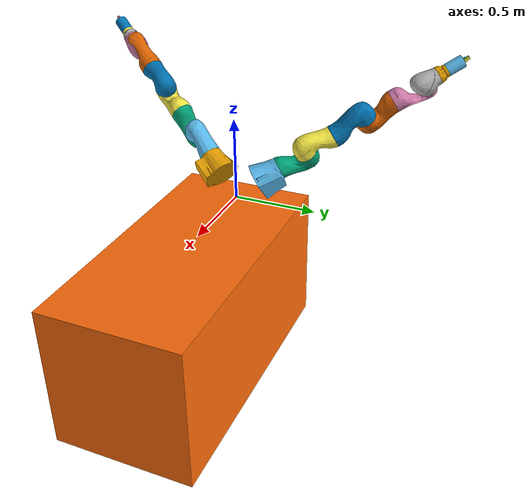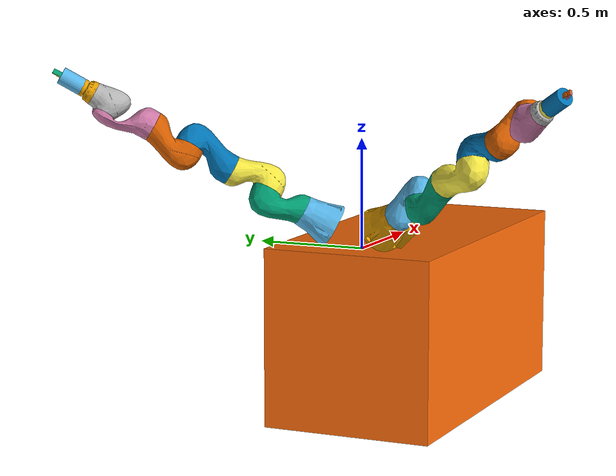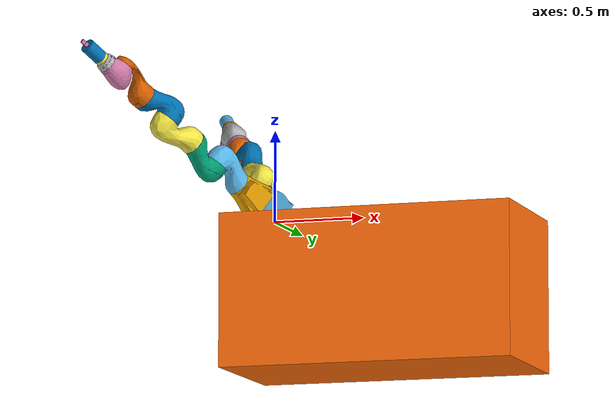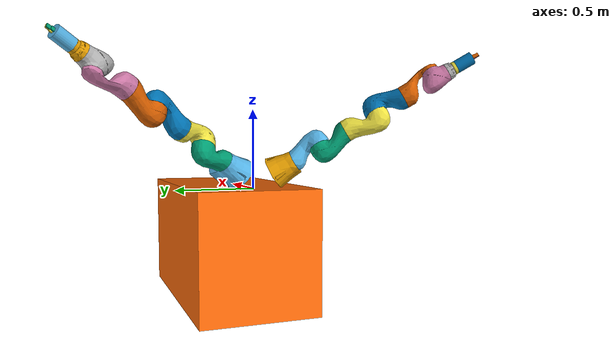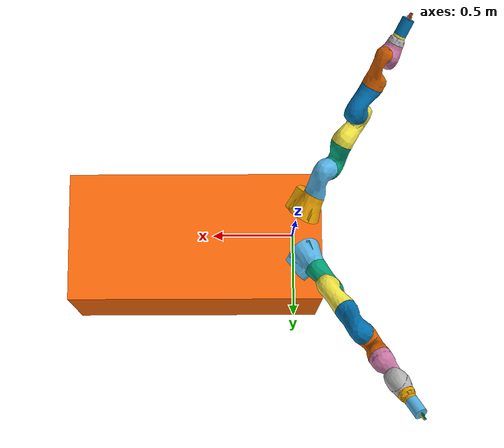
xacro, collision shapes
<?xml version="1.0"?>

<robot name="bh_robot" xmlns:xacro="http://www.ros.org/wiki/xacro">

    <xacro:property name="PI" value="3.14159265359"/>
    <xacro:property name="table_width" value="0.8" />
    <xacro:property name="table_height" value="0.83" />

    <!-- include the lbr iiwa macro -->
    <xacro:include filename="$(find lbr_description)/urdf/iiwa7/iiwa7_description.xacro" />

    <!-- include gripper -->
    <xacro:include filename="$(find dual_arm_description)/urdf/gripper/robotiq_hande_gripper.xacro" />

    <!-- include table and torso macro -->
    <xacro:include filename="$(find dual_arm_description)/urdf/torso.xacro" />
    <xacro:include filename="$(find dual_arm_description)/urdf/table.xacro" />

    <!-- add an arguent to allow for mock / hardware / gazebo -->
    <xacro:arg name="mode" default="mock" />

    <xacro:arg name="robot_name" default="bh_robot"/>

     <xacro:property name="use_mock_gripper_hardware" value="${'$(arg mode)' == 'mock'}" />

    <!-- add robot 1 via macro, note that different lbr_one_system_config.yaml are used (to configure port id) -->
    <xacro:iiwa7
        robot_name="left_arm"
        mode="$(arg mode)"
        system_config_path="$(find dual_arm_description)/ros2_control/left_arm_system_config.yaml" />

    <!-- add robot 2 via macro -->
    <xacro:iiwa7
        robot_name="right_arm"
        mode="$(arg mode)"
        system_config_path="$(find dual_arm_description)/ros2_control/right_arm_system_config.yaml" />

    <!-- KDL requires a link without inertia -->
    <link name="$(arg robot_name)_base" />

    <!-- Insert triangular mount -->
    <xacro:steel_torso parent="$(arg robot_name)_base">
        <origin xyz="0 0 0" rpy="0 0 ${PI}"/>
    </xacro:steel_torso>

    <!-- Summon the table -->
    <xacro:table parent="steel_torso_base">
        <origin xyz="0.186 ${table_width/2} -${table_height}" rpy="0 0 ${PI}"/>
    </xacro:table>

    <!-- Insert left and right arm into the corresponding position -->
    <joint name="left_arm_base" type="fixed">
        <origin xyz="0 0.0 0" rpy="0 0 0"/>
        <parent link="steel_torso_left"/>
        <child link="left_arm_link_0"/>
    </joint>

    <joint name="right_arm_base" type="fixed">
        <origin xyz="0 0.0 0" rpy="0 0 0"/>
        <parent link="steel_torso_right"/>
        <child link="right_arm_link_0"/>
    </joint>

    <!-- Summon the left gripper -->
    <xacro:robotiq_hande_gripper
        name="hande_left_gripper"
        prefix="left_hande_"
        parent="left_arm_link_ee"
        grip_pos_min="0.0"
        grip_pos_max="0.025"
        tty="/dev/ttymunin"
        baudrate="115200"
        parity="N"
        data_bits="8"
        stop_bit="1"
        slave_id="9"
        use_fake_hardware="false"
    />

    <!-- Summon the right gripper -->
    <xacro:robotiq_hande_gripper
        name="hande_right_gripper"
        prefix="right_hande_"
        parent="right_arm_link_ee"
        grip_pos_min="0.0"
        grip_pos_max="0.025"
        tty="/dev/ttyhugin"
        baudrate="115200"
        parity="N"
        data_bits="8"
        stop_bit="1"
        slave_id="9"
        use_fake_hardware="false"
    />

</robot>

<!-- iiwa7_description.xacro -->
<robot xmlns:xacro="http://www.ros.org/wiki/xacro">
    <!-- robot as extracted via https://github.com/syuntoku14/fusion2urdf -->
    <xacro:macro name="iiwa7"
        params="robot_name:=^|lbr mode:=^|mock system_config_path:=^|'$(find lbr_description)/ros2_control/lbr_system_config.yaml' joint_limits_path:=^|'$(find lbr_description)/urdf/iiwa7/joint_limits.yaml' initial_joint_positions_path:=^|'$(find lbr_description)/ros2_control/initial_joint_positions.yaml'">

        <!-- includes -->
        <xacro:include filename="$(find lbr_description)/gazebo/lbr_gazebo.xacro" />
        <xacro:include filename="$(find lbr_description)/ros2_control/lbr_system_interface.xacro" />

        <!-- joint limits via yaml -->
        <xacro:property name="joint_limits" value="${xacro.load_yaml(joint_limits_path)}" />

        <!-- constants -->
        <xacro:property name="PI" value="3.1415926535897931" />
        <xacro:property name="joint_damping" value="10.0" />
        <xacro:property name="joint_friction" value="0.1" />

        <!-- macros for gazebo / mock / hardware -->
        <xacro:lbr_gazebo robot_name="${robot_name}" />
        <xacro:lbr_system_interface
            robot_name="${robot_name}"
            mode="${mode}"
            joint_limits="${joint_limits}"
            system_config_path="${system_config_path}"
            initial_joint_positions_path="${initial_joint_positions_path}" />

        <link name="${robot_name}_link_0">
            <inertial>
                <origin rpy="0 0 0" xyz="-0.012857 0.0 0.069964" />
                <mass value="4.855658" />
                <inertia ixx="0.017839" ixy="0.0" ixz="0.000781" iyy="0.022294" iyz="0.0"
                    izz="0.021334" />
            </inertial>
            <visual>
                <origin rpy="0 0 0" xyz="0 0 0" />
                <geometry>
                    <mesh filename="package://lbr_description/meshes/iiwa7/visual/link_0.dae" />
                </geometry>
            </visual>
            <collision>
                <origin rpy="0 0 0" xyz="0 0 0" />
                <geometry>
                    <mesh filename="package://lbr_description/meshes/iiwa7/collision/link_0.stl" />
                </geometry>
            </collision>
        </link>

        <joint name="${robot_name}_A1" type="revolute">
            <origin rpy="0 0 0" xyz="0.0 0.0 0.1475" />
            <parent link="${robot_name}_link_0" />
            <child link="${robot_name}_link_1" />
            <axis xyz="0.0 0.0 1.0" />
            <limit
                effort="${joint_limits['A1']['effort']}"
                lower="${joint_limits['A1']['lower'] * PI / 180}"
                upper="${joint_limits['A1']['upper'] * PI / 180}"
                velocity="${joint_limits['A1']['velocity'] * PI / 180}" />
            <safety_controller
                soft_lower_limit="${joint_limits['A1']['lower'] * PI / 180}"
                soft_upper_limit="${joint_limits['A1']['upper'] * PI / 180}"
                k_position="${joint_limits['A1']['velocity'] / joint_limits['A1']['safety_position_margin']}"
                k_velocity="${joint_limits['A1']['k_velocity']}" />
            <dynamics damping="${joint_damping}" friction="${joint_friction}" />
        </joint>

        <link name="${robot_name}_link_1">
            <inertial>
                <origin rpy="0 0 0" xyz="0.0 -0.034819 0.123299" />
                <mass value="3.394011" />
                <inertia ixx="0.021383" ixy="0.0" ixz="0.0" iyy="0.020403" iyz="0.003797"
                    izz="0.007563" />
            </inertial>
            <visual>
                <origin rpy="0 0 0" xyz="0.0 0.0 -0.1475" />
                <geometry>
                    <mesh filename="package://lbr_description/meshes/iiwa7/visual/link_1.dae" />
                </geometry>
            </visual>
            <collision>
                <origin rpy="0 0 0" xyz="0.0 0.0 -0.1475" />
                <geometry>
                    <mesh filename="package://lbr_description/meshes/iiwa7/collision/link_1.stl" />
                </geometry>
            </collision>
        </link>

        <joint name="${robot_name}_A2" type="revolute">
            <origin rpy="0 0 0" xyz="0.0 -0.0105 0.1925" />
            <parent link="${robot_name}_link_1" />
            <child link="${robot_name}_link_2" />
            <axis xyz="0.0 1.0 0.0" />
            <limit
                effort="${joint_limits['A2']['effort']}"
                lower="${joint_limits['A2']['lower'] * PI / 180}"
                upper="${joint_limits['A2']['upper'] * PI / 180}"
                velocity="${joint_limits['A2']['velocity'] * PI / 180}" />
            <safety_controller
                soft_lower_limit="${joint_limits['A2']['lower'] * PI / 180}"
                soft_upper_limit="${joint_limits['A2']['upper'] * PI / 180}"
                k_position="${joint_limits['A2']['velocity'] / joint_limits['A2']['safety_position_margin']}"
                k_velocity="${joint_limits['A2']['k_velocity']}" />
            <dynamics damping="${joint_damping}" friction="${joint_friction}" />
        </joint>

        <link name="${robot_name}_link_2">
            <inertial>
                <origin rpy="0 0 0" xyz="0.0 0.039793 0.086944" />
                <mass value="4.031991" />
                <inertia ixx="0.031697" ixy="0.0" ixz="0.0" iyy="0.03008" iyz="0.005889"
                    izz="0.009666" />
            </inertial>
            <visual>
                <origin rpy="0 0 0" xyz="0.0 0.0105 -0.34" />
                <geometry>
                    <mesh filename="package://lbr_description/meshes/iiwa7/visual/link_2.dae" />
                </geometry>
            </visual>
            <collision>
                <origin rpy="0 0 0" xyz="0.0 0.0105 -0.34" />
                <geometry>
                    <mesh filename="package://lbr_description/meshes/iiwa7/collision/link_2.stl" />
                </geometry>
            </collision>
        </link>

        <joint name="${robot_name}_A3" type="revolute">
            <origin rpy="0 0 0" xyz="0.0 0.0105 0.2075" />
            <parent link="${robot_name}_link_2" />
            <child link="${robot_name}_link_3" />
            <axis xyz="0.0 0.0 1.0" />
            <limit
                effort="${joint_limits['A3']['effort']}"
                lower="${joint_limits['A3']['lower'] * PI / 180}"
                upper="${joint_limits['A3']['upper'] * PI / 180}"
                velocity="${joint_limits['A3']['velocity'] * PI / 180}" />
            <safety_controller
                soft_lower_limit="${joint_limits['A3']['lower'] * PI / 180}"
                soft_upper_limit="${joint_limits['A3']['upper'] * PI / 180}"
                k_position="${joint_limits['A3']['velocity'] / joint_limits['A3']['safety_position_margin']}"
                k_velocity="${joint_limits['A3']['k_velocity']}" />
            <dynamics damping="${joint_damping}" friction="${joint_friction}" />
        </joint>

        <link name="${robot_name}_link_3">
            <inertial>
                <origin rpy="0 0 0" xyz="0.0 0.034819 0.123299" />
                <mass value="3.394011" />
                <inertia ixx="0.021383" ixy="0.0" ixz="0.0" iyy="0.020403" iyz="-0.003797"
                    izz="0.007563" />
            </inertial>
            <visual>
                <origin rpy="0 0 0" xyz="0.0 0.0 -0.5475" />
                <geometry>
                    <mesh filename="package://lbr_description/meshes/iiwa7/visual/link_3.dae" />
                </geometry>
            </visual>
            <collision>
                <origin rpy="0 0 0" xyz="0.0 0.0 -0.5475" />
                <geometry>
                    <mesh filename="package://lbr_description/meshes/iiwa7/collision/link_3.stl" />
                </geometry>
            </collision>
        </link>

        <joint name="${robot_name}_A4" type="revolute">
            <origin rpy="0 0 0" xyz="0.0 0.0105 0.1925" />
            <parent link="${robot_name}_link_3" />
            <child link="${robot_name}_link_4" />
            <axis xyz="0.0 -1.0 0.0" />
            <limit
                effort="${joint_limits['A4']['effort']}"
                lower="${joint_limits['A4']['lower'] * PI / 180}"
                upper="${joint_limits['A4']['upper'] * PI / 180}"
                velocity="${joint_limits['A4']['velocity'] * PI / 180}" />
            <safety_controller
                soft_lower_limit="${joint_limits['A4']['lower'] * PI / 180}"
                soft_upper_limit="${joint_limits['A4']['upper'] * PI / 180}"
                k_position="${joint_limits['A4']['velocity'] / joint_limits['A4']['safety_position_margin']}"
                k_velocity="${joint_limits['A4']['k_velocity']}" />
            <dynamics damping="${joint_damping}" friction="${joint_friction}" />
        </joint>

        <link name="${robot_name}_link_4">
            <inertial>
                <origin rpy="0 0 0" xyz="0.0 -0.039793 0.086944" />
                <mass value="4.031989" />
                <inertia ixx="0.031695" ixy="0.0" ixz="0.0" iyy="0.030079" iyz="-0.005889"
                    izz="0.009665" />
            </inertial>
            <visual>
                <origin rpy="0 0 0" xyz="0.0 -0.0105 -0.74" />
                <geometry>
                    <mesh filename="package://lbr_description/meshes/iiwa7/visual/link_4.dae" />
                </geometry>
            </visual>
            <collision>
                <origin rpy="0 0 0" xyz="0.0 -0.0105 -0.74" />
                <geometry>
                    <mesh filename="package://lbr_description/meshes/iiwa7/collision/link_4.stl" />
                </geometry>
            </collision>
        </link>

        <joint name="${robot_name}_A5" type="revolute">
            <origin rpy="0 0 0" xyz="0.0 -0.0105 0.2075" />
            <parent link="${robot_name}_link_4" />
            <child link="${robot_name}_link_5" />
            <axis xyz="0.0 0.0 1.0" />
            <limit
                effort="${joint_limits['A5']['effort']}"
                lower="${joint_limits['A5']['lower'] * PI / 180}"
                upper="${joint_limits['A5']['upper'] * PI / 180}"
                velocity="${joint_limits['A5']['velocity'] * PI / 180}" />
            <safety_controller
                soft_lower_limit="${joint_limits['A5']['lower'] * PI / 180}"
                soft_upper_limit="${joint_limits['A5']['upper'] * PI / 180}"
                k_position="${joint_limits['A5']['velocity'] / joint_limits['A5']['safety_position_margin']}"
                k_velocity="${joint_limits['A5']['k_velocity']}" />
            <dynamics damping="${joint_damping}" friction="${joint_friction}" />
        </joint>

        <link name="${robot_name}_link_5">
            <inertial>
                <origin rpy="0 0 0" xyz="0.0 -0.029824 0.076267" />
                <mass value="1.529239" />
                <inertia ixx="0.008485" ixy="0.0" ixz="0.0" iyy="0.007136" iyz="0.002806"
                    izz="0.003848" />
            </inertial>
            <visual>
                <origin rpy="0 0 0" xyz="0.0 0.0 -0.9475" />
                <geometry>
                    <mesh filename="package://lbr_description/meshes/iiwa7/visual/link_5.dae" />
                </geometry>
            </visual>
            <collision>
                <origin rpy="0 0 0" xyz="0.0 0.0 -0.9475" />
                <geometry>
                    <mesh filename="package://lbr_description/meshes/iiwa7/collision/link_5.stl" />
                </geometry>
            </collision>
        </link>

        <joint name="${robot_name}_A6" type="revolute">
            <origin rpy="0 0 0" xyz="0.0 -0.0707 0.1925" />
            <parent link="${robot_name}_link_5" />
            <child link="${robot_name}_link_6" />
            <axis xyz="0.0 1.0 0.0" />
            <limit
                effort="${joint_limits['A6']['effort']}"
                lower="${joint_limits['A6']['lower'] * PI / 180}"
                upper="${joint_limits['A6']['upper'] * PI / 180}"
                velocity="${joint_limits['A6']['velocity'] * PI / 180}" />
            <safety_controller
                soft_lower_limit="${joint_limits['A6']['lower'] * PI / 180}"
                soft_upper_limit="${joint_limits['A6']['upper'] * PI / 180}"
                k_position="${joint_limits['A6']['velocity'] / joint_limits['A6']['safety_position_margin']}"
                k_velocity="${joint_limits['A6']['k_velocity']}" />
            <dynamics damping="${joint_damping}" friction="${joint_friction}" />
        </joint>

        <link name="${robot_name}_link_6">
            <inertial>
                <origin rpy="0 0 0" xyz="0.0 0.07102 0.00495" />
                <mass value="2.403626" />
                <inertia ixx="0.007067" ixy="0.0" ixz="0.0" iyy="0.006804" iyz="0.000311"
                    izz="0.004629" />
            </inertial>
            <visual>
                <origin rpy="0 0 0" xyz="0.0 0.0707 -1.14" />
                <geometry>
                    <mesh filename="package://lbr_description/meshes/iiwa7/visual/link_6.dae" />
                </geometry>
            </visual>
            <collision>
                <origin rpy="0 0 0" xyz="0.0 0.0707 -1.14" />
                <geometry>
                    <mesh filename="package://lbr_description/meshes/iiwa7/collision/link_6.stl" />
                </geometry>
            </collision>
        </link>

        <joint name="${robot_name}_A7" type="revolute">
            <origin rpy="0 0 0" xyz="0.0 0.0707 0.091" />
            <parent link="${robot_name}_link_6" />
            <child link="${robot_name}_link_7" />
            <axis xyz="0.0 0.0 1.0" />
            <limit
                effort="${joint_limits['A7']['effort']}"
                lower="${joint_limits['A7']['lower'] * PI / 180}"
                upper="${joint_limits['A7']['upper'] * PI / 180}"
                velocity="${joint_limits['A7']['velocity'] * PI / 180}" />
            <safety_controller
                soft_lower_limit="${joint_limits['A7']['lower'] * PI / 180}"
                soft_upper_limit="${joint_limits['A7']['upper'] * PI / 180}"
                k_position="${joint_limits['A7']['velocity'] / joint_limits['A7']['safety_position_margin']}"
                k_velocity="${joint_limits['A7']['k_velocity']}" />
            <dynamics damping="${joint_damping}" friction="${joint_friction}" />
        </joint>

        <link name="${robot_name}_link_7">
            <inertial>
                <origin rpy="0 0 0" xyz="3.0000e-06 -2.0000e-06 1.3782e-02" />
                <mass value="0.259474" />
                <inertia ixx="0.000171" ixy="0.0" ixz="0.0" iyy="0.000171" iyz="0.0" izz="0.000299" />
            </inertial>
            <visual>
                <origin rpy="0 0 0" xyz="0.0 0.0 -1.231" />
                <geometry>
                    <mesh filename="package://lbr_description/meshes/iiwa7/visual/link_7.dae" />
                </geometry>
            </visual>
            <collision>
                <origin rpy="0 0 0" xyz="0.0 0.0 -1.231" />
                <geometry>
                    <mesh filename="package://lbr_description/meshes/iiwa7/collision/link_7.stl" />
                </geometry>
            </collision>
        </link>

        <joint name="${robot_name}_joint_ee" type="fixed">
            <parent link="${robot_name}_link_7" />
            <child link="${robot_name}_link_ee" />
            <origin xyz="0 0 0.035" rpy="0 0 0" />
        </joint>

        <link name="${robot_name}_link_ee">
        </link>
    </xacro:macro>
</robot>

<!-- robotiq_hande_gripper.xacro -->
<robot xmlns:xacro="http://ros.org/wiki/xacro">
  <!--
    Original URDF file by Cristian C Beltran-Hernandez
  -->

  <xacro:include filename="$(find dual_arm_description)/urdf/gripper/robotiq_hande_gripper.ros2_control.xacro"/>
  <xacro:include filename="$(find dual_arm_description)/urdf/gripper/cylinder_inertial.xacro"/>

  <xacro:macro name="robotiq_hande_gripper" params="name prefix parent grip_pos_min grip_pos_max tty baudrate parity data_bits stop_bit slave_id use_fake_hardware coupler_mass:=0.119">
    <!-- ros2_control parameters  -->
    <xacro:robotiq_hande_ros2_control
      name="${name}"
      prefix="${prefix}"
      grip_pos_min="${grip_pos_min}"
      grip_pos_max="${grip_pos_max}"
      tty="${tty}"
      baudrate="${baudrate}"
      parity="${parity}"
      data_bits="${data_bits}"
      stop_bit="${stop_bit}"
      slave_id="${slave_id}"
      use_fake_hardware="${use_fake_hardware}"
    />

    <!-- Robotiq Hand-E specs -->
    <!--  + Height added by the IO coupler 11.0mm -->
    <!--  + Height added by the Hand-E 99.0mm -->
    <!--  + Coupler mass includes the bolts -->

    <xacro:arg name="coupler_height" default="0.011"/>
    <xacro:arg name="coupler_shell_height" default="0.0169"/>
    <xacro:arg name="coupler_parent_cutoff" default="0.003"/>
    <xacro:arg name="coupler_hande_cutoff" default="0.0029"/>
    <xacro:arg name="hande_height" default="0.099"/>
    <xacro:arg name="hande_radius" default="0.0375"/>

    <joint name="${prefix}robotiq_hande_coupler_joint" type="fixed">
      <origin xyz="0 0 0" rpy="0 0 0"/>
      <parent link="${parent}"/>
      <child link="${prefix}robotiq_hande_coupler"/>
    </joint>

    <link name="${prefix}robotiq_hande_coupler">
      <visual>
        <geometry>
          <mesh filename="package://robotiq_hande_description/meshes/io_coupler.dae"/>
        </geometry>
      </visual>

      <collision>
        <origin xyz="0 0 ${$(arg coupler_shell_height)/2 - $(arg coupler_parent_cutoff)}" rpy="0 0 0"/>
        <geometry>
          <cylinder length="$(arg coupler_shell_height)" radius="${$(arg hande_radius) + 0.001}"/>
        </geometry>
      </collision>

      <xacro:__robotiq_hande_cylinder_inertial radius="$(arg hande_radius)" height="$(arg coupler_shell_height)" mass="${coupler_mass}">
        <origin xyz="0 0 ${$(arg coupler_shell_height) / 2 - $(arg coupler_parent_cutoff)}" rpy="0 0 0"/>
      </xacro:__robotiq_hande_cylinder_inertial>
    </link>

    <joint name="${prefix}robotiq_hande_base_joint" type="fixed">
      <origin xyz="0 0 $(arg coupler_height)" rpy="0 0 0"/>
      <parent link="${prefix}robotiq_hande_coupler"/>
      <child link="${prefix}robotiq_hande_link"/>
    </joint>

    <link name="${prefix}robotiq_hande_link">
      <visual>
        <origin xyz="0 0 0" rpy="0 0 0"/>
        <geometry>
          <mesh filename="package://robotiq_hande_description/meshes/hande.dae" scale="1.0 1.0 1.0"/>
        </geometry>
      </visual>

      <collision>
        <origin xyz="0 0 ${($(arg hande_height) + $(arg coupler_hande_cutoff) + 0.005) / 2}" rpy="0 0 0"/>
        <geometry>
          <cylinder length="${$(arg hande_height) + $(arg coupler_hande_cutoff) + 0.005}" radius="${$(arg hande_radius) + 0.001}"/>
        </geometry>
      </collision>

      <xacro:__robotiq_hande_cylinder_inertial radius="$(arg hande_radius)" height="$(arg hande_height)" mass="0.86387">
        <origin xyz="0 0 ${$(arg hande_height) / 2}" rpy="0 0 0"/>
      </xacro:__robotiq_hande_cylinder_inertial>
    </link>

    <joint name="${prefix}robotiq_hande_left_finger_joint" type="prismatic">
      <origin xyz="0 0 $(arg hande_height)" rpy="0 0 0"/>
      <parent link="${prefix}robotiq_hande_link"/>
      <child link="${prefix}robotiq_hande_left_finger"/>
      <axis xyz="1 0 0"/>
      <limit effort="130" lower="${grip_pos_min}" upper="${grip_pos_max}" velocity="0.15"/>
    </joint>

    <link name="${prefix}robotiq_hande_left_finger">
      <visual>
        <origin xyz="0 0 0" rpy="0 0 0"/>
        <geometry>
          <mesh filename="package://robotiq_hande_description/meshes/finger.dae" scale="1.0 1.0 1.0"/>
        </geometry>
      </visual>

      <collision>
        <origin xyz="0 0 0" rpy="0 0 0"/>
        <geometry>
          <mesh filename="package://robotiq_hande_description/meshes/finger_collision.dae" scale="1.0 1.0 1.0"/>
        </geometry>
      </collision>

      <inertial>
        <origin xyz="0 0 0" rpy="0 0 0"/>
        <mass value="0.03804"/>
        <inertia ixx="1E-9" ixy="0.0" ixz="0.0" iyy="1E-9" iyz="0.0" izz="1E-9"/>
      </inertial>
    </link>

    <joint name="${prefix}robotiq_hande_right_finger_joint" type="prismatic">
      <origin xyz="0 0 $(arg hande_height)" rpy="0 0 0"/>
      <parent link="${prefix}robotiq_hande_link"/>
      <child link="${prefix}robotiq_hande_right_finger"/>
      <axis xyz="-1 0 0"/>
      <limit effort="130" lower="${grip_pos_min}" upper="${grip_pos_max}" velocity="0.15"/>
      <mimic joint="${prefix}robotiq_hande_left_finger_joint" multiplier="1" offset="0"/>
    </joint>

    <link name="${prefix}robotiq_hande_right_finger">
      <visual>
        <origin xyz="0 0 0" rpy="0 0 ${pi}"/>
        <geometry>
          <mesh filename="package://robotiq_hande_description/meshes/finger.dae" scale="1.0 1.0 1.0"/>
        </geometry>
      </visual>

      <collision>
        <origin xyz="0 0 0" rpy="0 0 ${pi}"/>
        <geometry>
          <mesh filename="package://robotiq_hande_description/meshes/finger_collision.dae" scale="1.0 1.0 1.0"/>
        </geometry>
      </collision>

      <inertial>
        <origin xyz="0 0 0" rpy="0 0 0"/>
        <mass value="0.03804"/>
        <inertia ixx="1E-9" ixy="0.0" ixz="0.0" iyy="1E-9" iyz="0.0" izz="1E-9"/>
      </inertial>
    </link>

    <joint name="${prefix}robotiq_hande_end_joint" type="fixed">
      <origin xyz="0 0 ${$(arg hande_height) + 0.0465}" rpy="0 0 0"/>
      <parent link="${prefix}robotiq_hande_link"/>
      <child link="${prefix}robotiq_hande_end"/>
    </joint>

    <link name="${prefix}robotiq_hande_end"/>
  </xacro:macro>
</robot>

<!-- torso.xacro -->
<robot name="hardware" xmlns:xacro="http://www.ros.org/wiki/xacro">

<xacro:property name="torso_left_xyz" value="0.065 0.1126 0.10074" />
<xacro:property name="torso_right_xyz" value="0.065 -0.1126 0.10074" />
<xacro:property name="torso_back_xyz" value="-0.13 0 0.10074" />

<xacro:macro name="steel_torso" params="parent *origin">
    <xacro:property name="mount_origin" value="0 0 0" />

    <joint name="steel_torso_base_joint" type="fixed">
            <parent link="${parent}" />
            <child link = "steel_torso_base" />
            <xacro:insert_block name="origin" />
    </joint>

    <joint name="steel_torso_left_joint" type="fixed">
            <parent link="steel_torso_base" />
            <child link = "steel_torso_left" />
            <origin xyz="${torso_left_xyz}" rpy="-1.01985341 -0.3007097 -0.70361386" />
    </joint>

    <joint name="steel_torso_right_joint" type="fixed">
            <parent link="steel_torso_base" />
            <child link = "steel_torso_right" />
            <origin xyz="${torso_right_xyz}" rpy="1.01985341 -0.3007097  0.70361386" />
    </joint>

    <joint name="steel_torso_back_joint" type="fixed">
            <parent link="steel_torso_base" />
            <child link = "steel_torso_back" />
            <origin xyz="${torso_back_xyz}" rpy="1.01985341 -0.3007097 -1.39078124" />
    </joint>

    <link name="steel_torso_left">
    </link>

    <link name="steel_torso_right">
    </link>

    <link name="steel_torso_back">
    </link>

    <link name="steel_torso_base">
        <inertial>
        <origin
            xyz="${mount_origin}" rpy="0 0 0" />
        <mass
            value="17.097" />
        <inertia
            ixx="0.231426028862462"
            ixy="3.4651505109641E-07"
            ixz="9.00820316949685E-07"
            iyy="0.352096317978007"
            iyz="1.23740976421988E-05"
            izz="0.231751030960783" />
        </inertial>
        <visual>
        <origin
            xyz="${mount_origin}" rpy="0 0 0" />
        <geometry>
            <mesh
            filename="package://dual_arm_description/meshes/torso/steel_torso.stl" />
        </geometry>
        <material name="grey">
            <color rgba="0.8667 0.86667 0.8902 1" />
        </material>
        </visual>
    </link>
</xacro:macro>
</robot>

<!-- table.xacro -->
<robot name="hardware" xmlns:xacro="http://www.ros.org/wiki/xacro">
<!-- distance 0 0 0.152 center of mass 0.004 0.004 0.085 mass 2.4 main gripper macro -->

<!-- Macro for the inertia of a box -->
  <xacro:macro name="box_inertia" params="x y z mass">
    <inertia ixx="${0.0833333 * mass * (y*y + z*z)}" ixy="0.0" ixz="0.0"
      iyy="${0.0833333 * mass * (x*x + z*z)}" iyz="0.0"
      izz="${0.0833333 * mass * (x*x + y*y)}" />
  </xacro:macro>
<!-- Macro for, well, orange -->>
  <material name="Orange">
    <color rgba="1.0 0.423529411765 0.0392156862745 1.0"/>
  </material>

<xacro:macro name="table" params="parent *origin">

  <!-- table is height adjustable -->
  <xacro:property name="table_height" value="0.83" />
  <xacro:property name="table_width" value="0.8" />
  <xacro:property name="table_length" value="1.6" />
  <xacro:property name="table_frame_offset" value="0 0 ${table_height}" />

  <xacro:property name="plate_height" value="0.02" />
  <xacro:property name="plate_width" value="0.80" />
  <xacro:property name="plate_length" value="0.30" />

  <xacro:property name="PI" value="3.14159265359"/>

  <!-- retrieved from the manual -->
  <xacro:property name="iiwa_pin_distance" value="0.184" />

  <!--  Defines offset of the box representing the table -->
  <xacro:property name="box_offset" value="${table_length/2.} ${table_width/2.} ${table_height/2.}" />

  <joint name="footprint_joint" type="fixed">
    <parent link="${parent}"/>
    <child link = "table_base_link"/>
    <xacro:insert_block name="origin" />
  </joint>

  <joint name="table_origin_joint" type="fixed">
    <parent link="table_base_link"/>
    <child link = "table_origin"/>
    <origin xyz="${table_frame_offset}" />
  </joint>

  <!-- x 185mm from the CAD plus 1mm shift in mounting position y centered half width of the table -->

  <joint name="plate_1_inner_joint" type="fixed">
    <parent link="table_origin"/>
    <child link = "plate_1_inner"/>
    <origin xyz="${table_length-plate_length/2} ${0.102+iiwa_pin_distance/2} ${plate_height}" rpy="0 0 ${PI}" />
  </joint>

  <joint name="plate_2_inner_joint" type="fixed">
    <parent link="table_origin"/>
    <child link = "plate_2_inner"/>
    <origin xyz="${table_length-plate_length/2} ${plate_width-0.102-iiwa_pin_distance/2} ${plate_height}" rpy="0 0 ${PI}" />
  </joint>

  <link name="table_origin">
  </link>

  <!-- this one is typically used -->
  <link name="plate_1_inner">
  </link>

  <!-- this one is typically used -->
  <link name="plate_2_inner">
  </link>

  <link name="table_base_link">
    <inertial>
      <origin xyz="${box_offset}" rpy="0 0 0"/>
      <mass value="100.0"/>
      <xacro:box_inertia x="${table_length}" y="${table_width}" z="${table_height}" mass="100.0"/>
    </inertial>
    <visual>
      <origin xyz="${box_offset}" rpy="0 0 0"/>
      <geometry>
        <box size="${table_length} ${table_width} ${table_height}"/>
      </geometry>
      <material name="Orange"/>
    </visual>
    <collision>
      <origin xyz="${box_offset}" rpy="0 0 0"/>
      <geometry>
        <box size="${table_length} ${table_width} ${table_height}"/>
      </geometry>
    </collision>
  </link>

</xacro:macro>
</robot>

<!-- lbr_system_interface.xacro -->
<robot xmlns:xacro="http://www.ros.org/wiki/xacro">
    <xacro:macro name="lbr_system_interface"
        params="robot_name mode system_config_path initial_joint_positions_path">

        <!-- load system parameters via yaml -->
        <xacro:property name="system_config"
            value="${xacro.load_yaml(system_config_path)}" />

        <!-- load initial positions via yaml for mock/gazebo simulation -->
        <xacro:property name="initial_joint_positions"
            value="${xacro.load_yaml(initial_joint_positions_path)}" />

        <!-- constants -->
        <xacro:property name="PI" value="3.1415926535897931" />

        <ros2_control name="${robot_name}_system_interface" type="system">
            <!-- load plugin depending on mode -->
            <xacro:if value="${mode == 'mock'}">
                <hardware>
                    <plugin>mock_components/GenericSystem</plugin>
                </hardware>
            </xacro:if>
            <xacro:if value="${mode == 'gazebo'}">
                <hardware>
                    <plugin>gz_ros2_control/GazeboSimSystem</plugin>
                </hardware>
            </xacro:if>
            <xacro:if value="${mode == 'hardware'}">
                <hardware>
                    <plugin>lbr_ros2_control::SystemInterface</plugin>
                    <param name="fri_client_sdk_major_version">${system_config['fri_client_sdk']['major_version']}</param>
                    <param name="fri_client_sdk_minor_version">${system_config['fri_client_sdk']['minor_version']}</param>
                    <param name="client_command_mode">${system_config['client_command_mode']}</param>
                    <param name="port_id">${system_config['port_id']}</param>
                    <param name="remote_host">${system_config['remote_host']}</param>
                    <param name="rt_prio">${system_config['rt_prio']}</param>
                    <param name="joint_position_tau">${system_config['joint_position_tau']}</param>
                    <param name="command_guard_variant">${system_config['command_guard']['variant']}</param>
                    <param name="state_guard_external_torque_safety_check">${system_config['state_guard']['external_torque_safety_check']}</param>
                    <param name="state_guard_external_torque_limit">${system_config['state_guard']['external_torque_limit']}</param>
                    <param name="external_torque_tau">${system_config['external_torque_tau']}</param>
                    <param name="measured_torque_tau">${system_config['measured_torque_tau']}</param>
                    <param name="open_loop">${system_config['open_loop']}</param>
                </hardware>
            </xacro:if>

            <!-- define lbr specific state interfaces as sensor, see
            https://github.com/ros-controls/roadmap/blob/master/design_drafts/components_architecture_and_urdf_examples.md -->
            <xacro:if value="${mode == 'hardware'}">
                <sensor name="auxiliary_sensor">
                    <!-- see KUKA::FRI::LBRState -->
                    <state_interface name="sample_time" />
                    <state_interface name="session_state" />
                    <state_interface name="connection_quality" />
                    <state_interface name="safety_state" />
                    <state_interface name="operation_mode" />
                    <state_interface name="drive_state" />
                    <state_interface name="client_command_mode" />
                    <state_interface name="overlay_type" />
                    <state_interface name="control_mode" />
                    <state_interface name="time_stamp_sec" />
                    <state_interface name="time_stamp_nano_sec" />
                    <state_interface name="tracking_performance" />
                </sensor>

                <!-- FRI Cartesian impedance control mode -->
                <gpio
                    name="wrench">
                    <command_interface name="force.x" />
                    <command_interface name="force.y" />
                    <command_interface name="force.z" />
                    <command_interface name="torque.x" />
                    <command_interface name="torque.y" />
                    <command_interface name="torque.z" />
                </gpio>
            </xacro:if>

            <!-- define joints and command/state interfaces for each joint -->
            <xacro:macro name="joint_interface"
                params="name mode initial_position">
                <joint name="${name}">
                    <command_interface name="position"/>
                    <!-- only single command interface, refer
                    https://github.com/ros-controls/gz_ros2_control/issues/182 -->
                    <xacro:unless value="${mode == 'gazebo'}">
                        <command_interface name="effort"/>
                    </xacro:unless>
                    <state_interface name="position">
                      <param name="initial_value">${initial_position}</param>
                    </state_interface>
                    <state_interface name="velocity" />
                    <state_interface name="effort" />
                    <xacro:if value="${mode == 'hardware'}">
                        <xacro:if
                            value="${system_config['fri_client_sdk']['major_version'] == 1}">
                            <state_interface name="commanded_joint_position" />
                        </xacro:if>
                        <state_interface name="commanded_torque" />
                        <state_interface name="external_torque" />
                        <state_interface name="ipo_joint_position" />
                    </xacro:if>
                </joint>
            </xacro:macro>

            <xacro:joint_interface name="${robot_name}_A1"
                mode="${mode}"
                initial_position="${initial_joint_positions['A1'] * PI / 180}" />
            <xacro:joint_interface name="${robot_name}_A2"
                mode="${mode}"
                initial_position="${initial_joint_positions['A2'] * PI / 180}" />
            <xacro:joint_interface name="${robot_name}_A3"
                mode="${mode}"
                initial_position="${initial_joint_positions['A3'] * PI / 180}" />
            <xacro:joint_interface name="${robot_name}_A4"
                mode="${mode}"
                initial_position="${initial_joint_positions['A4'] * PI / 180}"/>
            <xacro:joint_interface name="${robot_name}_A5"
                mode="${mode}"
                initial_position="${initial_joint_positions['A5'] * PI / 180}"/>
            <xacro:joint_interface name="${robot_name}_A6"
                mode="${mode}"
                initial_position="${initial_joint_positions['A6'] * PI / 180}" />
            <xacro:joint_interface name="${robot_name}_A7"
                mode="${mode}"
                initial_position="${initial_joint_positions['A7'] * PI / 180}" />
        </ros2_control>
    </xacro:macro>
</robot>
